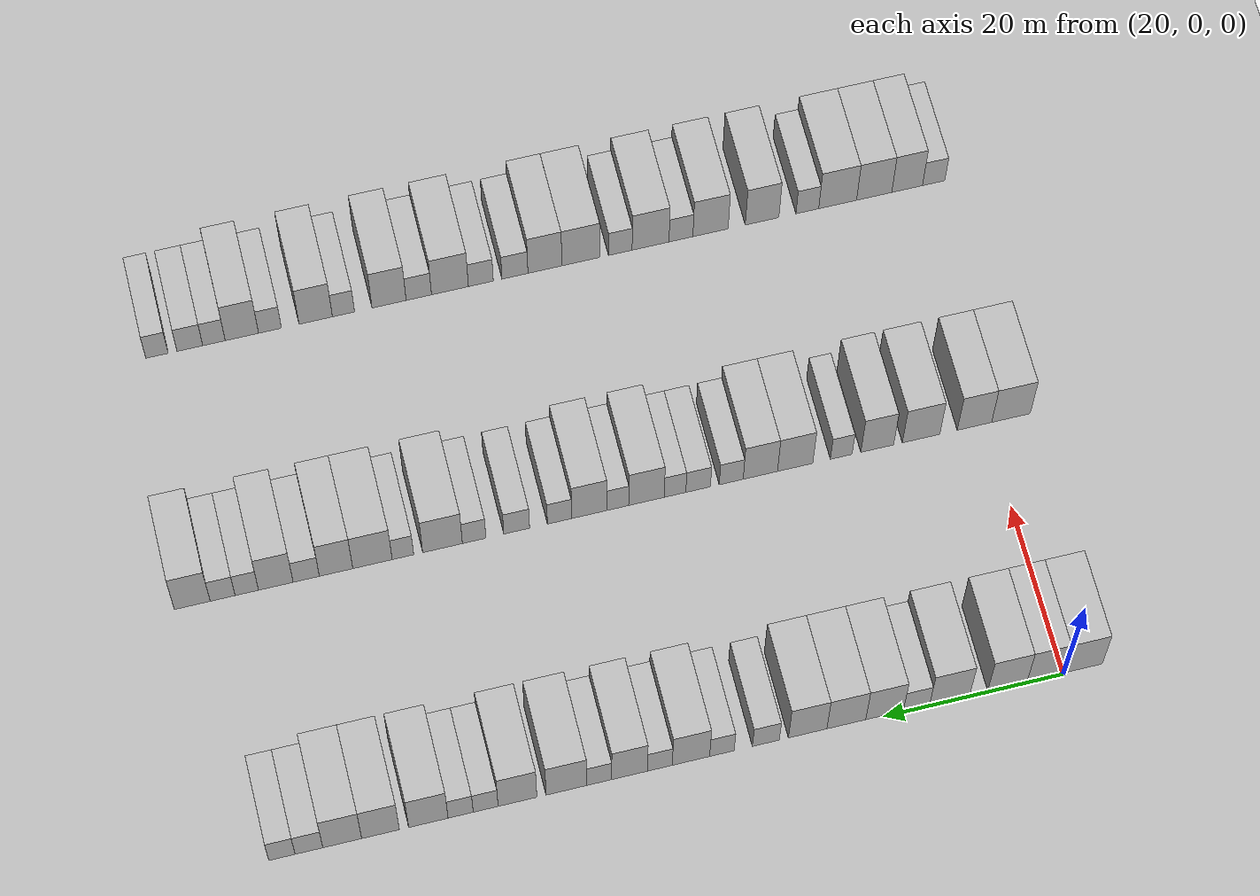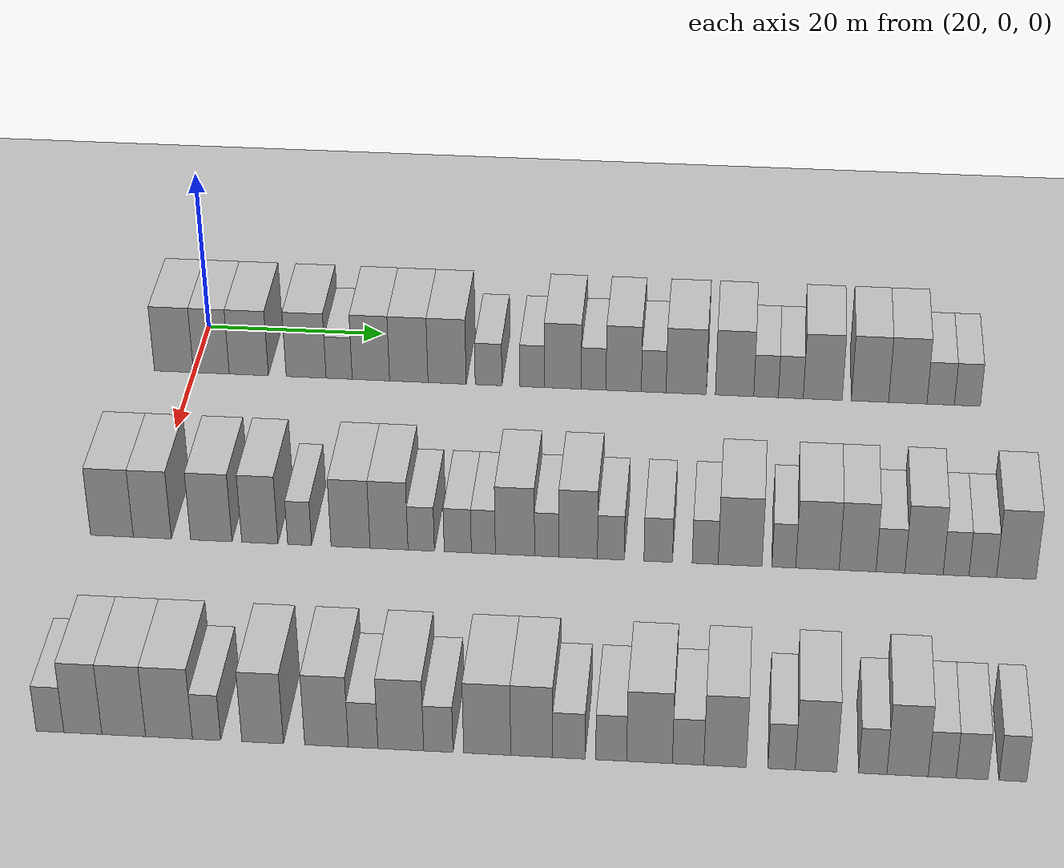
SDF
<sdf version="1.6">
 <world name="default">
  <include><name>ground_plane_1</name><uri>model://HANNAS_ground_plane</uri></include>
  <include>
   <name>ground_plane_2</name>
   <uri>model://HANNAS_ground_plane</uri>
   <pose>100 0 0  0 0 0</pose>
  </include>
  <model name="building_76">
   <static>1</static>
   <pose>25.0000 -2.0961 0 0.000000 0.000000 0.000000</pose>
   <link name="link">
    <pose>0 0 4.50 0 0 0</pose>
    <collision name="collision"><geometry><box><size>10.0000 4.3913 9.0000</size></box></geometry></collision>
    <visual name="visual">
     <cast_shadows>0</cast_shadows>
     <geometry><box><size>10.0000 4.3913 9.0000</size></box></geometry>
     <material>
      <script>
       <uri>model://HANNAS_wall/materials/scripts</uri>
       <uri>model://HANNAS_wall/materials/textures</uri>
       <name>vrc/HANNAS_wall</name>
      </script>
     </material>
    </visual>
   </link>
  </model>
  <model name="building_77">
   <static>1</static>
   <pose>25.0000 2.1116 0 0.000000 0.000000 0.000000</pose>
   <link name="link">
    <pose>0 0 4.50 0 0 0</pose>
    <collision name="collision"><geometry><box><size>10.0000 4.0241 9.0000</size></box></geometry></collision>
    <visual name="visual">
     <cast_shadows>0</cast_shadows>
     <geometry><box><size>10.0000 4.0241 9.0000</size></box></geometry>
     <material>
      <script>
       <uri>model://HANNAS_wall/materials/scripts</uri>
       <uri>model://HANNAS_wall/materials/textures</uri>
       <name>vrc/HANNAS_wall</name>
      </script>
     </material>
    </visual>
   </link>
  </model>
  <model name="building_78">
   <static>1</static>
   <pose>25.0000 6.3182 0 0.000000 0.000000 0.000000</pose>
   <link name="link">
    <pose>0 0 4.50 0 0 0</pose>
    <collision name="collision"><geometry><box><size>10.0000 4.3891 9.0000</size></box></geometry></collision>
    <visual name="visual">
     <cast_shadows>0</cast_shadows>
     <geometry><box><size>10.0000 4.3891 9.0000</size></box></geometry>
     <material>
      <script>
       <uri>model://HANNAS_wall/materials/scripts</uri>
       <uri>model://HANNAS_wall/materials/textures</uri>
       <name>vrc/HANNAS_wall</name>
      </script>
     </material>
    </visual>
   </link>
  </model>
  <model name="building_79">
   <static>1</static>
   <pose>25.0000 12.7459 0 0.000000 0.000000 0.000000</pose>
   <link name="link">
    <pose>0 0 4.50 0 0 0</pose>
    <collision name="collision"><geometry><box><size>10.0000 4.4661 9.0000</size></box></geometry></collision>
    <visual name="visual">
     <cast_shadows>0</cast_shadows>
     <geometry><box><size>10.0000 4.4661 9.0000</size></box></geometry>
     <material>
      <script>
       <uri>model://HANNAS_wall/materials/scripts</uri>
       <uri>model://HANNAS_wall/materials/textures</uri>
       <name>vrc/HANNAS_wall</name>
      </script>
     </material>
    </visual>
   </link>
  </model>
  <model name="building_80">
   <static>1</static>
   <pose>25.0000 16.4372 0 0.000000 0.000000 0.000000</pose>
   <link name="link">
    <pose>0 0 3.00 0 0 0</pose>
    <collision name="collision"><geometry><box><size>10.0000 2.9165 6.0000</size></box></geometry></collision>
    <visual name="visual">
     <cast_shadows>0</cast_shadows>
     <geometry><box><size>10.0000 2.9165 6.0000</size></box></geometry>
     <material>
      <script>
       <uri>model://HANNAS_wall/materials/scripts</uri>
       <uri>model://HANNAS_wall/materials/textures</uri>
       <name>vrc/HANNAS_wall</name>
      </script>
     </material>
    </visual>
   </link>
  </model>
  <model name="building_81">
   <static>1</static>
   <pose>25.0000 19.9787 0 0.000000 0.000000 0.000000</pose>
   <link name="link">
    <pose>0 0 4.50 0 0 0</pose>
    <collision name="collision"><geometry><box><size>10.0000 4.1663 9.0000</size></box></geometry></collision>
    <visual name="visual">
     <cast_shadows>0</cast_shadows>
     <geometry><box><size>10.0000 4.1663 9.0000</size></box></geometry>
     <material>
      <script>
       <uri>model://HANNAS_wall/materials/scripts</uri>
       <uri>model://HANNAS_wall/materials/textures</uri>
       <name>vrc/HANNAS_wall</name>
      </script>
     </material>
    </visual>
   </link>
  </model>
  <model name="building_82">
   <static>1</static>
   <pose>25.0000 24.2053 0 0.000000 0.000000 0.000000</pose>
   <link name="link">
    <pose>0 0 4.50 0 0 0</pose>
    <collision name="collision"><geometry><box><size>10.0000 4.2870 9.0000</size></box></geometry></collision>
    <visual name="visual">
     <cast_shadows>0</cast_shadows>
     <geometry><box><size>10.0000 4.2870 9.0000</size></box></geometry>
     <material>
      <script>
       <uri>model://HANNAS_wall/materials/scripts</uri>
       <uri>model://HANNAS_wall/materials/textures</uri>
       <name>vrc/HANNAS_wall</name>
      </script>
     </material>
    </visual>
   </link>
  </model>
  <model name="building_83">
   <static>1</static>
   <pose>25.0000 28.4724 0 0.000000 0.000000 0.000000</pose>
   <link name="link">
    <pose>0 0 4.50 0 0 0</pose>
    <collision name="collision"><geometry><box><size>10.0000 4.2471 9.0000</size></box></geometry></collision>
    <visual name="visual">
     <cast_shadows>0</cast_shadows>
     <geometry><box><size>10.0000 4.2471 9.0000</size></box></geometry>
     <material>
      <script>
       <uri>model://HANNAS_wall/materials/scripts</uri>
       <uri>model://HANNAS_wall/materials/textures</uri>
       <name>vrc/HANNAS_wall</name>
      </script>
     </material>
    </visual>
   </link>
  </model>
  <model name="building_84">
   <static>1</static>
   <pose>25.0000 33.0779 0 0.000000 0.000000 0.000000</pose>
   <link name="link">
    <pose>0 0 3.00 0 0 0</pose>
    <collision name="collision"><geometry><box><size>10.0000 2.9639 6.0000</size></box></geometry></collision>
    <visual name="visual">
     <cast_shadows>0</cast_shadows>
     <geometry><box><size>10.0000 2.9639 6.0000</size></box></geometry>
     <material>
      <script>
       <uri>model://HANNAS_wall/materials/scripts</uri>
       <uri>model://HANNAS_wall/materials/textures</uri>
       <name>vrc/HANNAS_wall</name>
      </script>
     </material>
    </visual>
   </link>
  </model>
  <model name="building_85">
   <static>1</static>
   <pose>25.0000 37.9106 0 0.000000 0.000000 0.000000</pose>
   <link name="link">
    <pose>0 0 3.00 0 0 0</pose>
    <collision name="collision"><geometry><box><size>10.0000 2.7015 6.0000</size></box></geometry></collision>
    <visual name="visual">
     <cast_shadows>0</cast_shadows>
     <geometry><box><size>10.0000 2.7015 6.0000</size></box></geometry>
     <material>
      <script>
       <uri>model://HANNAS_wall/materials/scripts</uri>
       <uri>model://HANNAS_wall/materials/textures</uri>
       <name>vrc/HANNAS_wall</name>
      </script>
     </material>
    </visual>
   </link>
  </model>
  <model name="building_86">
   <static>1</static>
   <pose>25.0000 41.3098 0 0.000000 0.000000 0.000000</pose>
   <link name="link">
    <pose>0 0 4.50 0 0 0</pose>
    <collision name="collision"><geometry><box><size>10.0000 4.0969 9.0000</size></box></geometry></collision>
    <visual name="visual">
     <cast_shadows>0</cast_shadows>
     <geometry><box><size>10.0000 4.0969 9.0000</size></box></geometry>
     <material>
      <script>
       <uri>model://HANNAS_wall/materials/scripts</uri>
       <uri>model://HANNAS_wall/materials/textures</uri>
       <name>vrc/HANNAS_wall</name>
      </script>
     </material>
    </visual>
   </link>
  </model>
  <model name="building_87">
   <static>1</static>
   <pose>25.0000 44.7218 0 0.000000 0.000000 0.000000</pose>
   <link name="link">
    <pose>0 0 3.00 0 0 0</pose>
    <collision name="collision"><geometry><box><size>10.0000 2.7271 6.0000</size></box></geometry></collision>
    <visual name="visual">
     <cast_shadows>0</cast_shadows>
     <geometry><box><size>10.0000 2.7271 6.0000</size></box></geometry>
     <material>
      <script>
       <uri>model://HANNAS_wall/materials/scripts</uri>
       <uri>model://HANNAS_wall/materials/textures</uri>
       <name>vrc/HANNAS_wall</name>
      </script>
     </material>
    </visual>
   </link>
  </model>
  <model name="building_88">
   <static>1</static>
   <pose>25.0000 48.0319 0 0.000000 0.000000 0.000000</pose>
   <link name="link">
    <pose>0 0 4.50 0 0 0</pose>
    <collision name="collision"><geometry><box><size>10.0000 3.8932 9.0000</size></box></geometry></collision>
    <visual name="visual">
     <cast_shadows>0</cast_shadows>
     <geometry><box><size>10.0000 3.8932 9.0000</size></box></geometry>
     <material>
      <script>
       <uri>model://HANNAS_wall/materials/scripts</uri>
       <uri>model://HANNAS_wall/materials/textures</uri>
       <name>vrc/HANNAS_wall</name>
      </script>
     </material>
    </visual>
   </link>
  </model>
  <model name="building_89">
   <static>1</static>
   <pose>25.0000 51.3427 0 0.000000 0.000000 0.000000</pose>
   <link name="link">
    <pose>0 0 3.00 0 0 0</pose>
    <collision name="collision"><geometry><box><size>10.0000 2.7284 6.0000</size></box></geometry></collision>
    <visual name="visual">
     <cast_shadows>0</cast_shadows>
     <geometry><box><size>10.0000 2.7284 6.0000</size></box></geometry>
     <material>
      <script>
       <uri>model://HANNAS_wall/materials/scripts</uri>
       <uri>model://HANNAS_wall/materials/textures</uri>
       <name>vrc/HANNAS_wall</name>
      </script>
     </material>
    </visual>
   </link>
  </model>
  <model name="building_90">
   <static>1</static>
   <pose>25.0000 54.9203 0 0.000000 0.000000 0.000000</pose>
   <link name="link">
    <pose>0 0 4.50 0 0 0</pose>
    <collision name="collision"><geometry><box><size>10.0000 4.4267 9.0000</size></box></geometry></collision>
    <visual name="visual">
     <cast_shadows>0</cast_shadows>
     <geometry><box><size>10.0000 4.4267 9.0000</size></box></geometry>
     <material>
      <script>
       <uri>model://HANNAS_wall/materials/scripts</uri>
       <uri>model://HANNAS_wall/materials/textures</uri>
       <name>vrc/HANNAS_wall</name>
      </script>
     </material>
    </visual>
   </link>
  </model>
  <model name="building_91">
   <static>1</static>
   <pose>25.0000 60.2374 0 0.000000 0.000000 0.000000</pose>
   <link name="link">
    <pose>0 0 4.50 0 0 0</pose>
    <collision name="collision"><geometry><box><size>10.0000 4.2075 9.0000</size></box></geometry></collision>
    <visual name="visual">
     <cast_shadows>0</cast_shadows>
     <geometry><box><size>10.0000 4.2075 9.0000</size></box></geometry>
     <material>
      <script>
       <uri>model://HANNAS_wall/materials/scripts</uri>
       <uri>model://HANNAS_wall/materials/textures</uri>
       <name>vrc/HANNAS_wall</name>
      </script>
     </material>
    </visual>
   </link>
  </model>
  <model name="building_92">
   <static>1</static>
   <pose>25.0000 63.6934 0 0.000000 0.000000 0.000000</pose>
   <link name="link">
    <pose>0 0 3.00 0 0 0</pose>
    <collision name="collision"><geometry><box><size>10.0000 2.7044 6.0000</size></box></geometry></collision>
    <visual name="visual">
     <cast_shadows>0</cast_shadows>
     <geometry><box><size>10.0000 2.7044 6.0000</size></box></geometry>
     <material>
      <script>
       <uri>model://HANNAS_wall/materials/scripts</uri>
       <uri>model://HANNAS_wall/materials/textures</uri>
       <name>vrc/HANNAS_wall</name>
      </script>
     </material>
    </visual>
   </link>
  </model>
  <model name="building_93">
   <static>1</static>
   <pose>25.0000 66.4078 0 0.000000 0.000000 0.000000</pose>
   <link name="link">
    <pose>0 0 3.00 0 0 0</pose>
    <collision name="collision"><geometry><box><size>10.0000 2.7244 6.0000</size></box></geometry></collision>
    <visual name="visual">
     <cast_shadows>0</cast_shadows>
     <geometry><box><size>10.0000 2.7244 6.0000</size></box></geometry>
     <material>
      <script>
       <uri>model://HANNAS_wall/materials/scripts</uri>
       <uri>model://HANNAS_wall/materials/textures</uri>
       <name>vrc/HANNAS_wall</name>
      </script>
     </material>
    </visual>
   </link>
  </model>
  <model name="building_94">
   <static>1</static>
   <pose>25.0000 69.9016 0 0.000000 0.000000 0.000000</pose>
   <link name="link">
    <pose>0 0 4.50 0 0 0</pose>
    <collision name="collision"><geometry><box><size>10.0000 4.2631 9.0000</size></box></geometry></collision>
    <visual name="visual">
     <cast_shadows>0</cast_shadows>
     <geometry><box><size>10.0000 4.2631 9.0000</size></box></geometry>
     <material>
      <script>
       <uri>model://HANNAS_wall/materials/scripts</uri>
       <uri>model://HANNAS_wall/materials/textures</uri>
       <name>vrc/HANNAS_wall</name>
      </script>
     </material>
    </visual>
   </link>
  </model>
  <model name="building_95">
   <static>1</static>
   <pose>25.0000 75.0665 0 0.000000 0.000000 0.000000</pose>
   <link name="link">
    <pose>0 0 4.50 0 0 0</pose>
    <collision name="collision"><geometry><box><size>10.0000 4.0668 9.0000</size></box></geometry></collision>
    <visual name="visual">
     <cast_shadows>0</cast_shadows>
     <geometry><box><size>10.0000 4.0668 9.0000</size></box></geometry>
     <material>
      <script>
       <uri>model://HANNAS_wall/materials/scripts</uri>
       <uri>model://HANNAS_wall/materials/textures</uri>
       <name>vrc/HANNAS_wall</name>
      </script>
     </material>
    </visual>
   </link>
  </model>
  <model name="building_96">
   <static>1</static>
   <pose>25.0000 79.1929 0 0.000000 0.000000 0.000000</pose>
   <link name="link">
    <pose>0 0 4.50 0 0 0</pose>
    <collision name="collision"><geometry><box><size>10.0000 4.1859 9.0000</size></box></geometry></collision>
    <visual name="visual">
     <cast_shadows>0</cast_shadows>
     <geometry><box><size>10.0000 4.1859 9.0000</size></box></geometry>
     <material>
      <script>
       <uri>model://HANNAS_wall/materials/scripts</uri>
       <uri>model://HANNAS_wall/materials/textures</uri>
       <name>vrc/HANNAS_wall</name>
      </script>
     </material>
    </visual>
   </link>
  </model>
  <model name="building_97">
   <static>1</static>
   <pose>25.0000 82.7799 0 0.000000 0.000000 0.000000</pose>
   <link name="link">
    <pose>0 0 3.00 0 0 0</pose>
    <collision name="collision"><geometry><box><size>10.0000 2.9881 6.0000</size></box></geometry></collision>
    <visual name="visual">
     <cast_shadows>0</cast_shadows>
     <geometry><box><size>10.0000 2.9881 6.0000</size></box></geometry>
     <material>
      <script>
       <uri>model://HANNAS_wall/materials/scripts</uri>
       <uri>model://HANNAS_wall/materials/textures</uri>
       <name>vrc/HANNAS_wall</name>
      </script>
     </material>
    </visual>
   </link>
  </model>
  <model name="building_98">
   <static>1</static>
   <pose>25.0000 85.6850 0 0.000000 0.000000 0.000000</pose>
   <link name="link">
    <pose>0 0 3.00 0 0 0</pose>
    <collision name="collision"><geometry><box><size>10.0000 2.8222 6.0000</size></box></geometry></collision>
    <visual name="visual">
     <cast_shadows>0</cast_shadows>
     <geometry><box><size>10.0000 2.8222 6.0000</size></box></geometry>
     <material>
      <script>
       <uri>model://HANNAS_wall/materials/scripts</uri>
       <uri>model://HANNAS_wall/materials/textures</uri>
       <name>vrc/HANNAS_wall</name>
      </script>
     </material>
    </visual>
   </link>
  </model>
  <model name="building_224">
   <static>1</static>
   <pose>55.0000 -2.8545 0 0.000000 0.000000 0.000000</pose>
   <link name="link">
    <pose>0 0 4.50 0 0 0</pose>
    <collision name="collision"><geometry><box><size>10.0000 4.4393 9.0000</size></box></geometry></collision>
    <visual name="visual">
     <cast_shadows>0</cast_shadows>
     <geometry><box><size>10.0000 4.4393 9.0000</size></box></geometry>
     <material>
      <script>
       <uri>model://HANNAS_wall/materials/scripts</uri>
       <uri>model://HANNAS_wall/materials/textures</uri>
       <name>vrc/HANNAS_wall</name>
      </script>
     </material>
    </visual>
   </link>
  </model>
  <model name="building_225">
   <static>1</static>
   <pose>55.0000 1.3343 0 0.000000 0.000000 0.000000</pose>
   <link name="link">
    <pose>0 0 4.50 0 0 0</pose>
    <collision name="collision"><geometry><box><size>10.0000 3.9383 9.0000</size></box></geometry></collision>
    <visual name="visual">
     <cast_shadows>0</cast_shadows>
     <geometry><box><size>10.0000 3.9383 9.0000</size></box></geometry>
     <material>
      <script>
       <uri>model://HANNAS_wall/materials/scripts</uri>
       <uri>model://HANNAS_wall/materials/textures</uri>
       <name>vrc/HANNAS_wall</name>
      </script>
     </material>
    </visual>
   </link>
  </model>
  <model name="building_226">
   <static>1</static>
   <pose>55.0000 7.4450 0 0.000000 0.000000 0.000000</pose>
   <link name="link">
    <pose>0 0 4.50 0 0 0</pose>
    <collision name="collision"><geometry><box><size>10.0000 4.2832 9.0000</size></box></geometry></collision>
    <visual name="visual">
     <cast_shadows>0</cast_shadows>
     <geometry><box><size>10.0000 4.2832 9.0000</size></box></geometry>
     <material>
      <script>
       <uri>model://HANNAS_wall/materials/scripts</uri>
       <uri>model://HANNAS_wall/materials/textures</uri>
       <name>vrc/HANNAS_wall</name>
      </script>
     </material>
    </visual>
   </link>
  </model>
  <model name="building_227">
   <static>1</static>
   <pose>55.0000 12.4578 0 0.000000 0.000000 0.000000</pose>
   <link name="link">
    <pose>0 0 4.50 0 0 0</pose>
    <collision name="collision"><geometry><box><size>10.0000 3.7423 9.0000</size></box></geometry></collision>
    <visual name="visual">
     <cast_shadows>0</cast_shadows>
     <geometry><box><size>10.0000 3.7423 9.0000</size></box></geometry>
     <material>
      <script>
       <uri>model://HANNAS_wall/materials/scripts</uri>
       <uri>model://HANNAS_wall/materials/textures</uri>
       <name>vrc/HANNAS_wall</name>
      </script>
     </material>
    </visual>
   </link>
  </model>
  <model name="building_228">
   <static>1</static>
   <pose>55.0000 16.5641 0 0.000000 0.000000 0.000000</pose>
   <link name="link">
    <pose>0 0 3.00 0 0 0</pose>
    <collision name="collision"><geometry><box><size>10.0000 2.4703 6.0000</size></box></geometry></collision>
    <visual name="visual">
     <cast_shadows>0</cast_shadows>
     <geometry><box><size>10.0000 2.4703 6.0000</size></box></geometry>
     <material>
      <script>
       <uri>model://HANNAS_wall/materials/scripts</uri>
       <uri>model://HANNAS_wall/materials/textures</uri>
       <name>vrc/HANNAS_wall</name>
      </script>
     </material>
    </visual>
   </link>
  </model>
  <model name="building_229">
   <static>1</static>
   <pose>55.0000 21.8044 0 0.000000 0.000000 0.000000</pose>
   <link name="link">
    <pose>0 0 4.50 0 0 0</pose>
    <collision name="collision"><geometry><box><size>10.0000 4.0103 9.0000</size></box></geometry></collision>
    <visual name="visual">
     <cast_shadows>0</cast_shadows>
     <geometry><box><size>10.0000 4.0103 9.0000</size></box></geometry>
     <material>
      <script>
       <uri>model://HANNAS_wall/materials/scripts</uri>
       <uri>model://HANNAS_wall/materials/textures</uri>
       <name>vrc/HANNAS_wall</name>
      </script>
     </material>
    </visual>
   </link>
  </model>
  <model name="building_230">
   <static>1</static>
   <pose>55.0000 25.7562 0 0.000000 0.000000 0.000000</pose>
   <link name="link">
    <pose>0 0 4.50 0 0 0</pose>
    <collision name="collision"><geometry><box><size>10.0000 3.8932 9.0000</size></box></geometry></collision>
    <visual name="visual">
     <cast_shadows>0</cast_shadows>
     <geometry><box><size>10.0000 3.8932 9.0000</size></box></geometry>
     <material>
      <script>
       <uri>model://HANNAS_wall/materials/scripts</uri>
       <uri>model://HANNAS_wall/materials/textures</uri>
       <name>vrc/HANNAS_wall</name>
      </script>
     </material>
    </visual>
   </link>
  </model>
  <model name="building_231">
   <static>1</static>
   <pose>55.0000 29.0580 0 0.000000 0.000000 0.000000</pose>
   <link name="link">
    <pose>0 0 3.00 0 0 0</pose>
    <collision name="collision"><geometry><box><size>10.0000 2.7104 6.0000</size></box></geometry></collision>
    <visual name="visual">
     <cast_shadows>0</cast_shadows>
     <geometry><box><size>10.0000 2.7104 6.0000</size></box></geometry>
     <material>
      <script>
       <uri>model://HANNAS_wall/materials/scripts</uri>
       <uri>model://HANNAS_wall/materials/textures</uri>
       <name>vrc/HANNAS_wall</name>
      </script>
     </material>
    </visual>
   </link>
  </model>
  <model name="building_232">
   <static>1</static>
   <pose>55.0000 32.8015 0 0.000000 0.000000 0.000000</pose>
   <link name="link">
    <pose>0 0 3.00 0 0 0</pose>
    <collision name="collision"><geometry><box><size>10.0000 2.7766 6.0000</size></box></geometry></collision>
    <visual name="visual">
     <cast_shadows>0</cast_shadows>
     <geometry><box><size>10.0000 2.7766 6.0000</size></box></geometry>
     <material>
      <script>
       <uri>model://HANNAS_wall/materials/scripts</uri>
       <uri>model://HANNAS_wall/materials/textures</uri>
       <name>vrc/HANNAS_wall</name>
      </script>
     </material>
    </visual>
   </link>
  </model>
  <model name="building_233">
   <static>1</static>
   <pose>55.0000 35.4157 0 0.000000 0.000000 0.000000</pose>
   <link name="link">
    <pose>0 0 3.00 0 0 0</pose>
    <collision name="collision"><geometry><box><size>10.0000 2.4519 6.0000</size></box></geometry></collision>
    <visual name="visual">
     <cast_shadows>0</cast_shadows>
     <geometry><box><size>10.0000 2.4519 6.0000</size></box></geometry>
     <material>
      <script>
       <uri>model://HANNAS_wall/materials/scripts</uri>
       <uri>model://HANNAS_wall/materials/textures</uri>
       <name>vrc/HANNAS_wall</name>
      </script>
     </material>
    </visual>
   </link>
  </model>
  <model name="building_234">
   <static>1</static>
   <pose>55.0000 38.6414 0 0.000000 0.000000 0.000000</pose>
   <link name="link">
    <pose>0 0 4.50 0 0 0</pose>
    <collision name="collision"><geometry><box><size>10.0000 3.9993 9.0000</size></box></geometry></collision>
    <visual name="visual">
     <cast_shadows>0</cast_shadows>
     <geometry><box><size>10.0000 3.9993 9.0000</size></box></geometry>
     <material>
      <script>
       <uri>model://HANNAS_wall/materials/scripts</uri>
       <uri>model://HANNAS_wall/materials/textures</uri>
       <name>vrc/HANNAS_wall</name>
      </script>
     </material>
    </visual>
   </link>
  </model>
  <model name="building_235">
   <static>1</static>
   <pose>55.0000 41.8773 0 0.000000 0.000000 0.000000</pose>
   <link name="link">
    <pose>0 0 3.00 0 0 0</pose>
    <collision name="collision"><geometry><box><size>10.0000 2.4724 6.0000</size></box></geometry></collision>
    <visual name="visual">
     <cast_shadows>0</cast_shadows>
     <geometry><box><size>10.0000 2.4724 6.0000</size></box></geometry>
     <material>
      <script>
       <uri>model://HANNAS_wall/materials/scripts</uri>
       <uri>model://HANNAS_wall/materials/textures</uri>
       <name>vrc/HANNAS_wall</name>
      </script>
     </material>
    </visual>
   </link>
  </model>
  <model name="building_236">
   <static>1</static>
   <pose>55.0000 45.0810 0 0.000000 0.000000 0.000000</pose>
   <link name="link">
    <pose>0 0 4.50 0 0 0</pose>
    <collision name="collision"><geometry><box><size>10.0000 3.9350 9.0000</size></box></geometry></collision>
    <visual name="visual">
     <cast_shadows>0</cast_shadows>
     <geometry><box><size>10.0000 3.9350 9.0000</size></box></geometry>
     <material>
      <script>
       <uri>model://HANNAS_wall/materials/scripts</uri>
       <uri>model://HANNAS_wall/materials/textures</uri>
       <name>vrc/HANNAS_wall</name>
      </script>
     </material>
    </visual>
   </link>
  </model>
  <model name="building_237">
   <static>1</static>
   <pose>55.0000 48.4083 0 0.000000 0.000000 0.000000</pose>
   <link name="link">
    <pose>0 0 3.00 0 0 0</pose>
    <collision name="collision"><geometry><box><size>10.0000 2.7197 6.0000</size></box></geometry></collision>
    <visual name="visual">
     <cast_shadows>0</cast_shadows>
     <geometry><box><size>10.0000 2.7197 6.0000</size></box></geometry>
     <material>
      <script>
       <uri>model://HANNAS_wall/materials/scripts</uri>
       <uri>model://HANNAS_wall/materials/textures</uri>
       <name>vrc/HANNAS_wall</name>
      </script>
     </material>
    </visual>
   </link>
  </model>
  <model name="building_238">
   <static>1</static>
   <pose>55.0000 53.2127 0 0.000000 0.000000 0.000000</pose>
   <link name="link">
    <pose>0 0 3.00 0 0 0</pose>
    <collision name="collision"><geometry><box><size>10.0000 2.8891 6.0000</size></box></geometry></collision>
    <visual name="visual">
     <cast_shadows>0</cast_shadows>
     <geometry><box><size>10.0000 2.8891 6.0000</size></box></geometry>
     <material>
      <script>
       <uri>model://HANNAS_wall/materials/scripts</uri>
       <uri>model://HANNAS_wall/materials/textures</uri>
       <name>vrc/HANNAS_wall</name>
      </script>
     </material>
    </visual>
   </link>
  </model>
  <model name="building_239">
   <static>1</static>
   <pose>55.0000 57.9708 0 0.000000 0.000000 0.000000</pose>
   <link name="link">
    <pose>0 0 3.00 0 0 0</pose>
    <collision name="collision"><geometry><box><size>10.0000 2.6271 6.0000</size></box></geometry></collision>
    <visual name="visual">
     <cast_shadows>0</cast_shadows>
     <geometry><box><size>10.0000 2.6271 6.0000</size></box></geometry>
     <material>
      <script>
       <uri>model://HANNAS_wall/materials/scripts</uri>
       <uri>model://HANNAS_wall/materials/textures</uri>
       <name>vrc/HANNAS_wall</name>
      </script>
     </material>
    </visual>
   </link>
  </model>
  <model name="building_240">
   <static>1</static>
   <pose>55.0000 61.5001 0 0.000000 0.000000 0.000000</pose>
   <link name="link">
    <pose>0 0 4.50 0 0 0</pose>
    <collision name="collision"><geometry><box><size>10.0000 4.4315 9.0000</size></box></geometry></collision>
    <visual name="visual">
     <cast_shadows>0</cast_shadows>
     <geometry><box><size>10.0000 4.4315 9.0000</size></box></geometry>
     <material>
      <script>
       <uri>model://HANNAS_wall/materials/scripts</uri>
       <uri>model://HANNAS_wall/materials/textures</uri>
       <name>vrc/HANNAS_wall</name>
      </script>
     </material>
    </visual>
   </link>
  </model>
  <model name="building_241">
   <static>1</static>
   <pose>55.0000 65.9166 0 0.000000 0.000000 0.000000</pose>
   <link name="link">
    <pose>0 0 3.00 0 0 0</pose>
    <collision name="collision"><geometry><box><size>10.0000 2.4015 6.0000</size></box></geometry></collision>
    <visual name="visual">
     <cast_shadows>0</cast_shadows>
     <geometry><box><size>10.0000 2.4015 6.0000</size></box></geometry>
     <material>
      <script>
       <uri>model://HANNAS_wall/materials/scripts</uri>
       <uri>model://HANNAS_wall/materials/textures</uri>
       <name>vrc/HANNAS_wall</name>
      </script>
     </material>
    </visual>
   </link>
  </model>
  <model name="building_242">
   <static>1</static>
   <pose>55.0000 69.3044 0 0.000000 0.000000 0.000000</pose>
   <link name="link">
    <pose>0 0 4.50 0 0 0</pose>
    <collision name="collision"><geometry><box><size>10.0000 4.3742 9.0000</size></box></geometry></collision>
    <visual name="visual">
     <cast_shadows>0</cast_shadows>
     <geometry><box><size>10.0000 4.3742 9.0000</size></box></geometry>
     <material>
      <script>
       <uri>model://HANNAS_wall/materials/scripts</uri>
       <uri>model://HANNAS_wall/materials/textures</uri>
       <name>vrc/HANNAS_wall</name>
      </script>
     </material>
    </visual>
   </link>
  </model>
  <model name="building_243">
   <static>1</static>
   <pose>55.0000 73.3438 0 0.000000 0.000000 0.000000</pose>
   <link name="link">
    <pose>0 0 4.50 0 0 0</pose>
    <collision name="collision"><geometry><box><size>10.0000 3.7047 9.0000</size></box></geometry></collision>
    <visual name="visual">
     <cast_shadows>0</cast_shadows>
     <geometry><box><size>10.0000 3.7047 9.0000</size></box></geometry>
     <material>
      <script>
       <uri>model://HANNAS_wall/materials/scripts</uri>
       <uri>model://HANNAS_wall/materials/textures</uri>
       <name>vrc/HANNAS_wall</name>
      </script>
     </material>
    </visual>
   </link>
  </model>
  <model name="building_244">
   <static>1</static>
   <pose>55.0000 76.6485 0 0.000000 0.000000 0.000000</pose>
   <link name="link">
    <pose>0 0 3.00 0 0 0</pose>
    <collision name="collision"><geometry><box><size>10.0000 2.9046 6.0000</size></box></geometry></collision>
    <visual name="visual">
     <cast_shadows>0</cast_shadows>
     <geometry><box><size>10.0000 2.9046 6.0000</size></box></geometry>
     <material>
      <script>
       <uri>model://HANNAS_wall/materials/scripts</uri>
       <uri>model://HANNAS_wall/materials/textures</uri>
       <name>vrc/HANNAS_wall</name>
      </script>
     </material>
    </visual>
   </link>
  </model>
  <model name="building_245">
   <static>1</static>
   <pose>55.0000 80.0154 0 0.000000 0.000000 0.000000</pose>
   <link name="link">
    <pose>0 0 4.50 0 0 0</pose>
    <collision name="collision"><geometry><box><size>10.0000 3.8291 9.0000</size></box></geometry></collision>
    <visual name="visual">
     <cast_shadows>0</cast_shadows>
     <geometry><box><size>10.0000 3.8291 9.0000</size></box></geometry>
     <material>
      <script>
       <uri>model://HANNAS_wall/materials/scripts</uri>
       <uri>model://HANNAS_wall/materials/textures</uri>
       <name>vrc/HANNAS_wall</name>
      </script>
     </material>
    </visual>
   </link>
  </model>
  <model name="building_246">
   <static>1</static>
   <pose>55.0000 83.2208 0 0.000000 0.000000 0.000000</pose>
   <link name="link">
    <pose>0 0 3.00 0 0 0</pose>
    <collision name="collision"><geometry><box><size>10.0000 2.5816 6.0000</size></box></geometry></collision>
    <visual name="visual">
     <cast_shadows>0</cast_shadows>
     <geometry><box><size>10.0000 2.5816 6.0000</size></box></geometry>
     <material>
      <script>
       <uri>model://HANNAS_wall/materials/scripts</uri>
       <uri>model://HANNAS_wall/materials/textures</uri>
       <name>vrc/HANNAS_wall</name>
      </script>
     </material>
    </visual>
   </link>
  </model>
  <model name="building_247">
   <static>1</static>
   <pose>55.0000 85.8894 0 0.000000 0.000000 0.000000</pose>
   <link name="link">
    <pose>0 0 3.00 0 0 0</pose>
    <collision name="collision"><geometry><box><size>10.0000 2.7557 6.0000</size></box></geometry></collision>
    <visual name="visual">
     <cast_shadows>0</cast_shadows>
     <geometry><box><size>10.0000 2.7557 6.0000</size></box></geometry>
     <material>
      <script>
       <uri>model://HANNAS_wall/materials/scripts</uri>
       <uri>model://HANNAS_wall/materials/textures</uri>
       <name>vrc/HANNAS_wall</name>
      </script>
     </material>
    </visual>
   </link>
  </model>
  <model name="building_248">
   <static>1</static>
   <pose>55.0000 89.2438 0 0.000000 0.000000 0.000000</pose>
   <link name="link">
    <pose>0 0 4.50 0 0 0</pose>
    <collision name="collision"><geometry><box><size>10.0000 3.9532 9.0000</size></box></geometry></collision>
    <visual name="visual">
     <cast_shadows>0</cast_shadows>
     <geometry><box><size>10.0000 3.9532 9.0000</size></box></geometry>
     <material>
      <script>
       <uri>model://HANNAS_wall/materials/scripts</uri>
       <uri>model://HANNAS_wall/materials/textures</uri>
       <name>vrc/HANNAS_wall</name>
      </script>
     </material>
    </visual>
   </link>
  </model>
  <model name="building_362">
   <static>1</static>
   <pose>85.0000 -2.5061 0 0.000000 0.000000 0.000000</pose>
   <link name="link">
    <pose>0 0 3.00 0 0 0</pose>
    <collision name="collision"><geometry><box><size>10.0000 2.6334 6.0000</size></box></geometry></collision>
    <visual name="visual">
     <cast_shadows>0</cast_shadows>
     <geometry><box><size>10.0000 2.6334 6.0000</size></box></geometry>
     <material>
      <script>
       <uri>model://HANNAS_wall/materials/scripts</uri>
       <uri>model://HANNAS_wall/materials/textures</uri>
       <name>vrc/HANNAS_wall</name>
      </script>
     </material>
    </visual>
   </link>
  </model>
  <model name="building_363">
   <static>1</static>
   <pose>85.0000 0.6175 0 0.000000 0.000000 0.000000</pose>
   <link name="link">
    <pose>0 0 4.50 0 0 0</pose>
    <collision name="collision"><geometry><box><size>10.0000 3.6138 9.0000</size></box></geometry></collision>
    <visual name="visual">
     <cast_shadows>0</cast_shadows>
     <geometry><box><size>10.0000 3.6138 9.0000</size></box></geometry>
     <material>
      <script>
       <uri>model://HANNAS_wall/materials/scripts</uri>
       <uri>model://HANNAS_wall/materials/textures</uri>
       <name>vrc/HANNAS_wall</name>
      </script>
     </material>
    </visual>
   </link>
  </model>
  <model name="building_364">
   <static>1</static>
   <pose>85.0000 4.4928 0 0.000000 0.000000 0.000000</pose>
   <link name="link">
    <pose>0 0 4.50 0 0 0</pose>
    <collision name="collision"><geometry><box><size>10.0000 4.1370 9.0000</size></box></geometry></collision>
    <visual name="visual">
     <cast_shadows>0</cast_shadows>
     <geometry><box><size>10.0000 4.1370 9.0000</size></box></geometry>
     <material>
      <script>
       <uri>model://HANNAS_wall/materials/scripts</uri>
       <uri>model://HANNAS_wall/materials/textures</uri>
       <name>vrc/HANNAS_wall</name>
      </script>
     </material>
    </visual>
   </link>
  </model>
  <model name="building_365">
   <static>1</static>
   <pose>85.0000 8.7800 0 0.000000 0.000000 0.000000</pose>
   <link name="link">
    <pose>0 0 4.50 0 0 0</pose>
    <collision name="collision"><geometry><box><size>10.0000 4.4375 9.0000</size></box></geometry></collision>
    <visual name="visual">
     <cast_shadows>0</cast_shadows>
     <geometry><box><size>10.0000 4.4375 9.0000</size></box></geometry>
     <material>
      <script>
       <uri>model://HANNAS_wall/materials/scripts</uri>
       <uri>model://HANNAS_wall/materials/textures</uri>
       <name>vrc/HANNAS_wall</name>
      </script>
     </material>
    </visual>
   </link>
  </model>
  <model name="building_366">
   <static>1</static>
   <pose>85.0000 12.3308 0 0.000000 0.000000 0.000000</pose>
   <link name="link">
    <pose>0 0 3.00 0 0 0</pose>
    <collision name="collision"><geometry><box><size>10.0000 2.6640 6.0000</size></box></geometry></collision>
    <visual name="visual">
     <cast_shadows>0</cast_shadows>
     <geometry><box><size>10.0000 2.6640 6.0000</size></box></geometry>
     <material>
      <script>
       <uri>model://HANNAS_wall/materials/scripts</uri>
       <uri>model://HANNAS_wall/materials/textures</uri>
       <name>vrc/HANNAS_wall</name>
      </script>
     </material>
    </visual>
   </link>
  </model>
  <model name="building_367">
   <static>1</static>
   <pose>85.0000 17.6243 0 0.000000 0.000000 0.000000</pose>
   <link name="link">
    <pose>0 0 4.50 0 0 0</pose>
    <collision name="collision"><geometry><box><size>10.0000 3.9229 9.0000</size></box></geometry></collision>
    <visual name="visual">
     <cast_shadows>0</cast_shadows>
     <geometry><box><size>10.0000 3.9229 9.0000</size></box></geometry>
     <material>
      <script>
       <uri>model://HANNAS_wall/materials/scripts</uri>
       <uri>model://HANNAS_wall/materials/textures</uri>
       <name>vrc/HANNAS_wall</name>
      </script>
     </material>
    </visual>
   </link>
  </model>
  <model name="building_368">
   <static>1</static>
   <pose>85.0000 23.6388 0 0.000000 0.000000 0.000000</pose>
   <link name="link">
    <pose>0 0 4.50 0 0 0</pose>
    <collision name="collision"><geometry><box><size>10.0000 4.1060 9.0000</size></box></geometry></collision>
    <visual name="visual">
     <cast_shadows>0</cast_shadows>
     <geometry><box><size>10.0000 4.1060 9.0000</size></box></geometry>
     <material>
      <script>
       <uri>model://HANNAS_wall/materials/scripts</uri>
       <uri>model://HANNAS_wall/materials/textures</uri>
       <name>vrc/HANNAS_wall</name>
      </script>
     </material>
    </visual>
   </link>
  </model>
  <model name="building_369">
   <static>1</static>
   <pose>85.0000 27.0809 0 0.000000 0.000000 0.000000</pose>
   <link name="link">
    <pose>0 0 3.00 0 0 0</pose>
    <collision name="collision"><geometry><box><size>10.0000 2.7783 6.0000</size></box></geometry></collision>
    <visual name="visual">
     <cast_shadows>0</cast_shadows>
     <geometry><box><size>10.0000 2.7783 6.0000</size></box></geometry>
     <material>
      <script>
       <uri>model://HANNAS_wall/materials/scripts</uri>
       <uri>model://HANNAS_wall/materials/textures</uri>
       <name>vrc/HANNAS_wall</name>
      </script>
     </material>
    </visual>
   </link>
  </model>
  <model name="building_370">
   <static>1</static>
   <pose>85.0000 30.6109 0 0.000000 0.000000 0.000000</pose>
   <link name="link">
    <pose>0 0 4.50 0 0 0</pose>
    <collision name="collision"><geometry><box><size>10.0000 4.2816 9.0000</size></box></geometry></collision>
    <visual name="visual">
     <cast_shadows>0</cast_shadows>
     <geometry><box><size>10.0000 4.2816 9.0000</size></box></geometry>
     <material>
      <script>
       <uri>model://HANNAS_wall/materials/scripts</uri>
       <uri>model://HANNAS_wall/materials/textures</uri>
       <name>vrc/HANNAS_wall</name>
      </script>
     </material>
    </visual>
   </link>
  </model>
  <model name="building_371">
   <static>1</static>
   <pose>85.0000 34.1224 0 0.000000 0.000000 0.000000</pose>
   <link name="link">
    <pose>0 0 3.00 0 0 0</pose>
    <collision name="collision"><geometry><box><size>10.0000 2.7415 6.0000</size></box></geometry></collision>
    <visual name="visual">
     <cast_shadows>0</cast_shadows>
     <geometry><box><size>10.0000 2.7415 6.0000</size></box></geometry>
     <material>
      <script>
       <uri>model://HANNAS_wall/materials/scripts</uri>
       <uri>model://HANNAS_wall/materials/textures</uri>
       <name>vrc/HANNAS_wall</name>
      </script>
     </material>
    </visual>
   </link>
  </model>
  <model name="building_372">
   <static>1</static>
   <pose>85.0000 38.6873 0 0.000000 0.000000 0.000000</pose>
   <link name="link">
    <pose>0 0 4.50 0 0 0</pose>
    <collision name="collision"><geometry><box><size>10.0000 4.3882 9.0000</size></box></geometry></collision>
    <visual name="visual">
     <cast_shadows>0</cast_shadows>
     <geometry><box><size>10.0000 4.3882 9.0000</size></box></geometry>
     <material>
      <script>
       <uri>model://HANNAS_wall/materials/scripts</uri>
       <uri>model://HANNAS_wall/materials/textures</uri>
       <name>vrc/HANNAS_wall</name>
      </script>
     </material>
    </visual>
   </link>
  </model>
  <model name="building_373">
   <static>1</static>
   <pose>85.0000 42.8414 0 0.000000 0.000000 0.000000</pose>
   <link name="link">
    <pose>0 0 4.50 0 0 0</pose>
    <collision name="collision"><geometry><box><size>10.0000 3.9199 9.0000</size></box></geometry></collision>
    <visual name="visual">
     <cast_shadows>0</cast_shadows>
     <geometry><box><size>10.0000 3.9199 9.0000</size></box></geometry>
     <material>
      <script>
       <uri>model://HANNAS_wall/materials/scripts</uri>
       <uri>model://HANNAS_wall/materials/textures</uri>
       <name>vrc/HANNAS_wall</name>
      </script>
     </material>
    </visual>
   </link>
  </model>
  <model name="building_374">
   <static>1</static>
   <pose>85.0000 46.2979 0 0.000000 0.000000 0.000000</pose>
   <link name="link">
    <pose>0 0 3.00 0 0 0</pose>
    <collision name="collision"><geometry><box><size>10.0000 2.9932 6.0000</size></box></geometry></collision>
    <visual name="visual">
     <cast_shadows>0</cast_shadows>
     <geometry><box><size>10.0000 2.9932 6.0000</size></box></geometry>
     <material>
      <script>
       <uri>model://HANNAS_wall/materials/scripts</uri>
       <uri>model://HANNAS_wall/materials/textures</uri>
       <name>vrc/HANNAS_wall</name>
      </script>
     </material>
    </visual>
   </link>
  </model>
  <model name="building_375">
   <static>1</static>
   <pose>85.0000 50.2258 0 0.000000 0.000000 0.000000</pose>
   <link name="link">
    <pose>0 0 3.00 0 0 0</pose>
    <collision name="collision"><geometry><box><size>10.0000 2.8626 6.0000</size></box></geometry></collision>
    <visual name="visual">
     <cast_shadows>0</cast_shadows>
     <geometry><box><size>10.0000 2.8626 6.0000</size></box></geometry>
     <material>
      <script>
       <uri>model://HANNAS_wall/materials/scripts</uri>
       <uri>model://HANNAS_wall/materials/textures</uri>
       <name>vrc/HANNAS_wall</name>
      </script>
     </material>
    </visual>
   </link>
  </model>
  <model name="building_376">
   <static>1</static>
   <pose>85.0000 53.7794 0 0.000000 0.000000 0.000000</pose>
   <link name="link">
    <pose>0 0 4.50 0 0 0</pose>
    <collision name="collision"><geometry><box><size>10.0000 4.2445 9.0000</size></box></geometry></collision>
    <visual name="visual">
     <cast_shadows>0</cast_shadows>
     <geometry><box><size>10.0000 4.2445 9.0000</size></box></geometry>
     <material>
      <script>
       <uri>model://HANNAS_wall/materials/scripts</uri>
       <uri>model://HANNAS_wall/materials/textures</uri>
       <name>vrc/HANNAS_wall</name>
      </script>
     </material>
    </visual>
   </link>
  </model>
  <model name="building_377">
   <static>1</static>
   <pose>85.0000 57.3557 0 0.000000 0.000000 0.000000</pose>
   <link name="link">
    <pose>0 0 3.00 0 0 0</pose>
    <collision name="collision"><geometry><box><size>10.0000 2.9081 6.0000</size></box></geometry></collision>
    <visual name="visual">
     <cast_shadows>0</cast_shadows>
     <geometry><box><size>10.0000 2.9081 6.0000</size></box></geometry>
     <material>
      <script>
       <uri>model://HANNAS_wall/materials/scripts</uri>
       <uri>model://HANNAS_wall/materials/textures</uri>
       <name>vrc/HANNAS_wall</name>
      </script>
     </material>
    </visual>
   </link>
  </model>
  <model name="building_378">
   <static>1</static>
   <pose>85.0000 60.7650 0 0.000000 0.000000 0.000000</pose>
   <link name="link">
    <pose>0 0 4.50 0 0 0</pose>
    <collision name="collision"><geometry><box><size>10.0000 3.9104 9.0000</size></box></geometry></collision>
    <visual name="visual">
     <cast_shadows>0</cast_shadows>
     <geometry><box><size>10.0000 3.9104 9.0000</size></box></geometry>
     <material>
      <script>
       <uri>model://HANNAS_wall/materials/scripts</uri>
       <uri>model://HANNAS_wall/materials/textures</uri>
       <name>vrc/HANNAS_wall</name>
      </script>
     </material>
    </visual>
   </link>
  </model>
  <model name="building_379">
   <static>1</static>
   <pose>85.0000 65.9825 0 0.000000 0.000000 0.000000</pose>
   <link name="link">
    <pose>0 0 3.00 0 0 0</pose>
    <collision name="collision"><geometry><box><size>10.0000 2.5246 6.0000</size></box></geometry></collision>
    <visual name="visual">
     <cast_shadows>0</cast_shadows>
     <geometry><box><size>10.0000 2.5246 6.0000</size></box></geometry>
     <material>
      <script>
       <uri>model://HANNAS_wall/materials/scripts</uri>
       <uri>model://HANNAS_wall/materials/textures</uri>
       <name>vrc/HANNAS_wall</name>
      </script>
     </material>
    </visual>
   </link>
  </model>
  <model name="building_380">
   <static>1</static>
   <pose>85.0000 69.1521 0 0.000000 0.000000 0.000000</pose>
   <link name="link">
    <pose>0 0 4.50 0 0 0</pose>
    <collision name="collision"><geometry><box><size>10.0000 3.8148 9.0000</size></box></geometry></collision>
    <visual name="visual">
     <cast_shadows>0</cast_shadows>
     <geometry><box><size>10.0000 3.8148 9.0000</size></box></geometry>
     <material>
      <script>
       <uri>model://HANNAS_wall/materials/scripts</uri>
       <uri>model://HANNAS_wall/materials/textures</uri>
       <name>vrc/HANNAS_wall</name>
      </script>
     </material>
    </visual>
   </link>
  </model>
  <model name="building_381">
   <static>1</static>
   <pose>85.0000 74.3620 0 0.000000 0.000000 0.000000</pose>
   <link name="link">
    <pose>0 0 3.00 0 0 0</pose>
    <collision name="collision"><geometry><box><size>10.0000 2.6049 6.0000</size></box></geometry></collision>
    <visual name="visual">
     <cast_shadows>0</cast_shadows>
     <geometry><box><size>10.0000 2.6049 6.0000</size></box></geometry>
     <material>
      <script>
       <uri>model://HANNAS_wall/materials/scripts</uri>
       <uri>model://HANNAS_wall/materials/textures</uri>
       <name>vrc/HANNAS_wall</name>
      </script>
     </material>
    </visual>
   </link>
  </model>
  <model name="building_382">
   <static>1</static>
   <pose>85.0000 77.5569 0 0.000000 0.000000 0.000000</pose>
   <link name="link">
    <pose>0 0 4.50 0 0 0</pose>
    <collision name="collision"><geometry><box><size>10.0000 3.7850 9.0000</size></box></geometry></collision>
    <visual name="visual">
     <cast_shadows>0</cast_shadows>
     <geometry><box><size>10.0000 3.7850 9.0000</size></box></geometry>
     <material>
      <script>
       <uri>model://HANNAS_wall/materials/scripts</uri>
       <uri>model://HANNAS_wall/materials/textures</uri>
       <name>vrc/HANNAS_wall</name>
      </script>
     </material>
    </visual>
   </link>
  </model>
  <model name="building_383">
   <static>1</static>
   <pose>85.0000 80.7268 0 0.000000 0.000000 0.000000</pose>
   <link name="link">
    <pose>0 0 3.00 0 0 0</pose>
    <collision name="collision"><geometry><box><size>10.0000 2.5548 6.0000</size></box></geometry></collision>
    <visual name="visual">
     <cast_shadows>0</cast_shadows>
     <geometry><box><size>10.0000 2.5548 6.0000</size></box></geometry>
     <material>
      <script>
       <uri>model://HANNAS_wall/materials/scripts</uri>
       <uri>model://HANNAS_wall/materials/textures</uri>
       <name>vrc/HANNAS_wall</name>
      </script>
     </material>
    </visual>
   </link>
  </model>
  <model name="building_384">
   <static>1</static>
   <pose>85.0000 83.4603 0 0.000000 0.000000 0.000000</pose>
   <link name="link">
    <pose>0 0 3.00 0 0 0</pose>
    <collision name="collision"><geometry><box><size>10.0000 2.9123 6.0000</size></box></geometry></collision>
    <visual name="visual">
     <cast_shadows>0</cast_shadows>
     <geometry><box><size>10.0000 2.9123 6.0000</size></box></geometry>
     <material>
      <script>
       <uri>model://HANNAS_wall/materials/scripts</uri>
       <uri>model://HANNAS_wall/materials/textures</uri>
       <name>vrc/HANNAS_wall</name>
      </script>
     </material>
    </visual>
   </link>
  </model>
  <model name="building_385">
   <static>1</static>
   <pose>85.0000 87.1870 0 0.000000 0.000000 0.000000</pose>
   <link name="link">
    <pose>0 0 3.00 0 0 0</pose>
    <collision name="collision"><geometry><box><size>10.0000 2.5409 6.0000</size></box></geometry></collision>
    <visual name="visual">
     <cast_shadows>0</cast_shadows>
     <geometry><box><size>10.0000 2.5409 6.0000</size></box></geometry>
     <material>
      <script>
       <uri>model://HANNAS_wall/materials/scripts</uri>
       <uri>model://HANNAS_wall/materials/textures</uri>
       <name>vrc/HANNAS_wall</name>
      </script>
     </material>
    </visual>
   </link>
  </model>
 </world>
</sdf>
